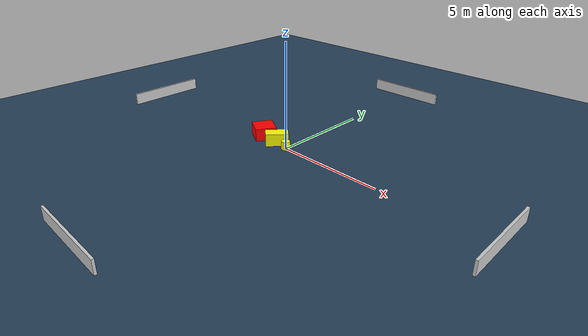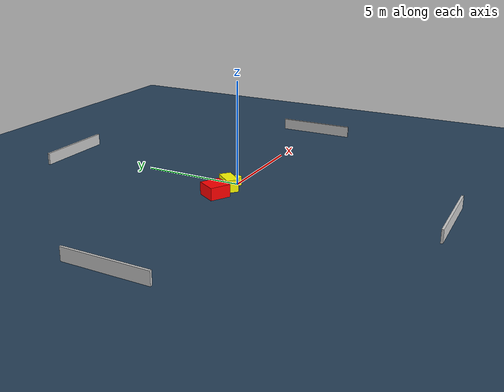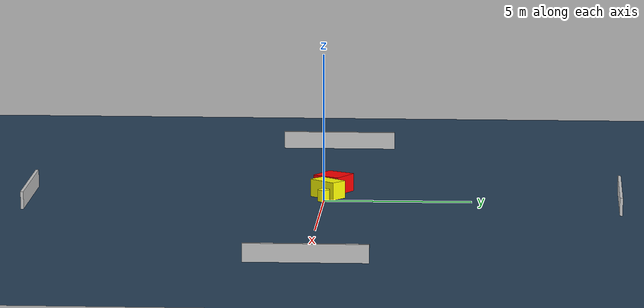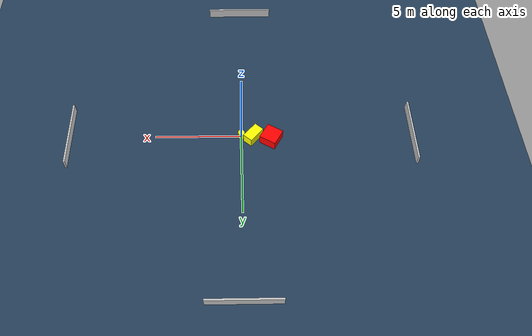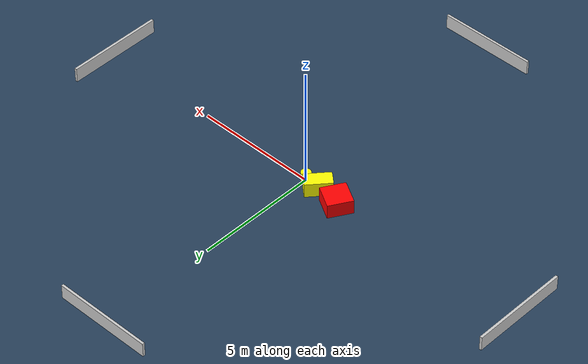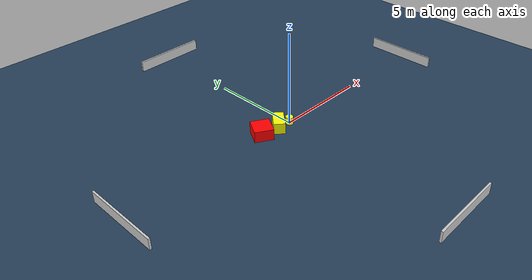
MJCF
<?xml version="1.0" ?>
<mujoco model="generated_environment">
  <option timestep="0.01" integrator="RK4" cone="elliptic"/>
  <default>
    <geom density="1"/>
  </default>
  <asset>
    <texture builtin="gradient" height="3072" name="skybox" rgb1="0.3 0.5 0.7" rgb2="0 0 0" type="skybox" width="512"/>
    <texture builtin="checker" height="300" name="groundplane" rgb1="0.2 0.3 0.4" rgb2="0.1 0.2 0.3" type="2d" width="300"/>
    <material name="groundplane" reflectance="0.2" texrepeat="5 5" texture="groundplane"/>
  </asset>
  <worldbody>
    <light dir="0 0 -1" directional="true" pos="0 0 1.5"/>
    <geom condim="3" friction="0.5 0.005 0.001" material="groundplane" name="floor" pos="0 0 0" size="0 0 0.05" type="plane"/>
    <body name="walls">
      <geom name="wall_1" condim="4" pos="-10.0 0.0 0.3" rgba="0.800000011920929 0.800000011920929 0.800000011920929 1.0" size="0.05 2.0 0.3" type="box"/>
      <geom name="wall_2" condim="4" pos="10.0 0.0 0.3" rgba="0.800000011920929 0.800000011920929 0.800000011920929 1.0" size="0.05 2.0 0.3" type="box"/>
      <geom name="wall_3" condim="4" pos="0.0 -10.0 0.3" rgba="0.800000011920929 0.800000011920929 0.800000011920929 1.0" size="2.0 0.05 0.3" type="box"/>
      <geom name="wall_4" condim="4" pos="0.0 10.0 0.3" rgba="0.800000011920929 0.800000011920929 0.800000011920929 1.0" size="2.0 0.05 0.3" type="box"/>
    </body>
    <body name="robot">
      <joint name="joint_x" type="slide" pos="0 0 0" axis="1 0 0"/>
      <joint name="joint_y" type="slide" pos="0 0 0" axis="0 1 0"/>
      <geom name="robot" type="cylinder" pos="0.0 0.0 0.2" size="0.2 0.2 0.0" mass="5.0" friction="1.0 0.005 0.0001" condim="4" rgba="1.0 1.0 0.0 1.0"/>
    </body>
    <body name="obstacle_1_movable">
      <geom name="obstacle_1_movable" condim="4" pos="-0.690685850959853 0.09888659879895076 0.3" euler="0 0 319.16009867311675" friction="0.0 0.005 0.001" rgba="1.0 1.0 0.0 1.0" size="0.2915625926798111 0.5349922776056931 0.3" type="box" mass="0.1"/>
      <joint type="free"/>
    </body>
    <body name="obstacle_2_static">
      <geom name="obstacle_2_static" condim="4" pos="-1.7310981940603494 0.2411344543308352 0.3" euler="0 0 59.53405351082354" friction="0.0 0.005 0.001" rgba="1.0 0.0 0.0 1.0" size="0.5005519149643325 0.497055994033569 0.3" type="box"/>
    </body>
  </worldbody>
  <actuator>
    <motor name="actuator_x" joint="joint_x" gear="1" ctrlrange="-1 1"/>
    <motor name="actuator_y" joint="joint_y" gear="1" ctrlrange="-1 1"/>
  </actuator>
</mujoco>
